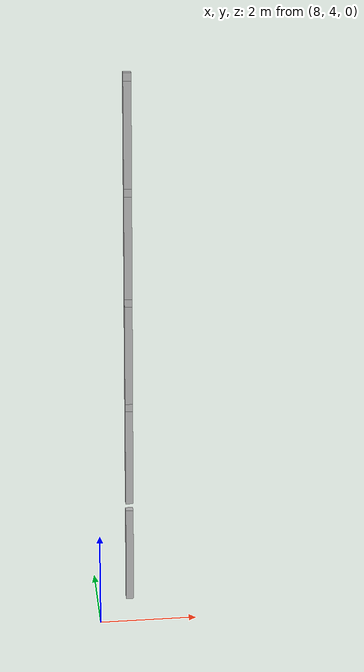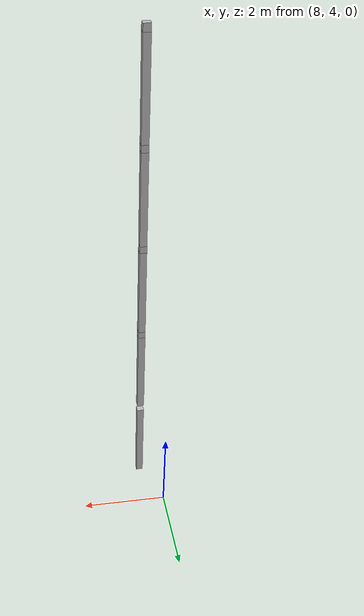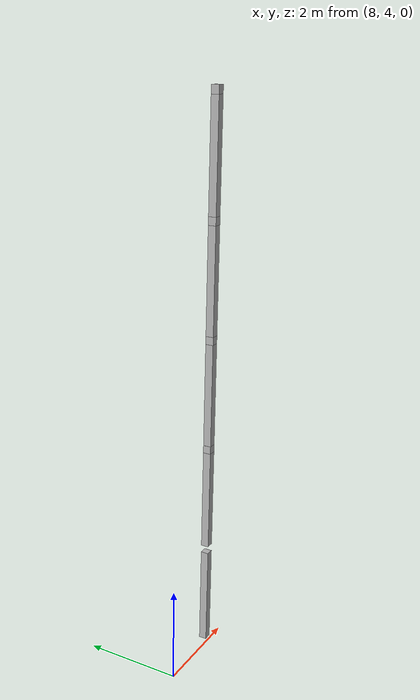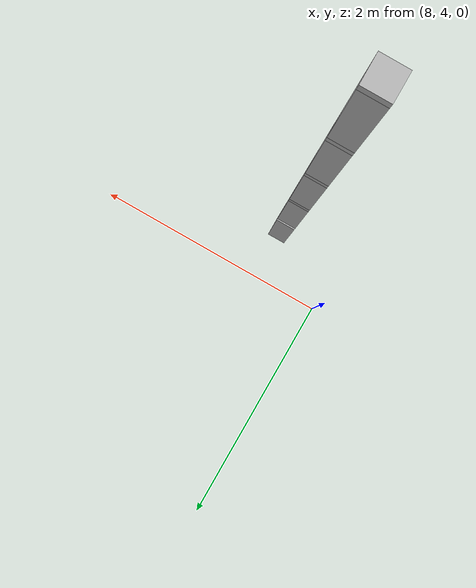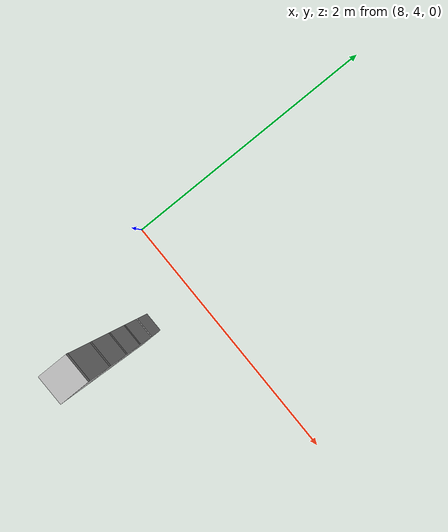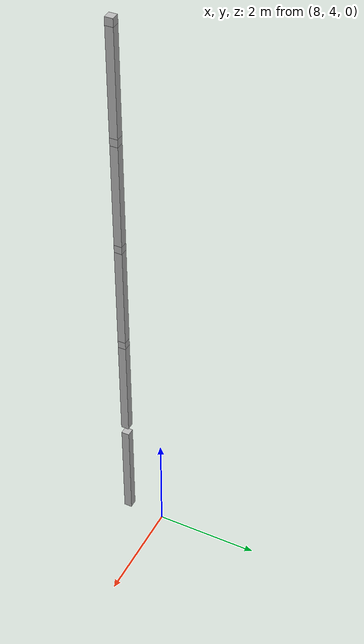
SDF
<sdf version="1.7">
 <world name="default">
  <model name="orthogonal_747_2.000.15_TS">
   <static>1</static>
   <link name="z_link_2_4_7">
    <inertial>
     <mass>1</mass>
     <inertia>
      <ixx>0.166667</ixx>
      <ixy>0</ixy>
      <ixz>0</ixz>
      <iyy>0.166667</iyy>
      <iyz>0</iyz>
      <izz>0.166667</izz>
     </inertia>
    </inertial>
    <pose>15.05 8.6 4.3 0 -0 0</pose>
    <visual name="visual_0">
     <laser_retro>2549</laser_retro>
     <geometry><box><size>0.15 1e-06 2</size></box></geometry>
     <material>
      <script><name>Gazebo/Grey</name><uri>file://media/materials/scripts/gazebo.material</uri></script>
      <shader type="pixel"><normal_map>__default__</normal_map></shader>
      <ambient>0.678 0.498 0.659 1</ambient>
      <diffuse>0.7 0.7 0.7 1</diffuse>
      <specular>0.01 0.01 0.01 1</specular>
      <emissive>0 0 0 1</emissive>
     </material>
     <pose>0 -0.075 0 0 -0 0</pose>
     <transparency>1</transparency>
    </visual>
    <visual name="visual_1">
     <laser_retro>2550</laser_retro>
     <geometry><box><size>0.15 1e-06 2</size></box></geometry>
     <material>
      <script><name>Gazebo/Grey</name><uri>file://media/materials/scripts/gazebo.material</uri></script>
      <shader type="pixel"><normal_map>__default__</normal_map></shader>
      <ambient>0.447 0.624 0.812 1</ambient>
      <diffuse>0.7 0.7 0.7 1</diffuse>
      <specular>0.01 0.01 0.01 1</specular>
      <emissive>0 0 0 1</emissive>
     </material>
     <pose>0 0.075 0 0 -0 0</pose>
     <transparency>1</transparency>
    </visual>
    <visual name="visual_2">
     <laser_retro>2551</laser_retro>
     <geometry><box><size>0.15 0.15 1e-06</size></box></geometry>
     <material>
      <script><name>Gazebo/Grey</name><uri>file://media/materials/scripts/gazebo.material</uri></script>
      <shader type="pixel"><normal_map>__default__</normal_map></shader>
      <ambient>0.988 0.686 0.243 1</ambient>
      <diffuse>0.7 0.7 0.7 1</diffuse>
      <specular>0.01 0.01 0.01 1</specular>
      <emissive>0 0 0 1</emissive>
     </material>
     <pose>0 0 -1 0 -0 0</pose>
     <transparency>1</transparency>
    </visual>
    <visual name="visual_3">
     <laser_retro>2552</laser_retro>
     <geometry><box><size>1e-06 0.15 2</size></box></geometry>
     <material>
      <script><name>Gazebo/Grey</name><uri>file://media/materials/scripts/gazebo.material</uri></script>
      <shader type="pixel"><normal_map>__default__</normal_map></shader>
      <ambient>0.988 0.914 0.31 1</ambient>
      <diffuse>0.7 0.7 0.7 1</diffuse>
      <specular>0.01 0.01 0.01 1</specular>
      <emissive>0 0 0 1</emissive>
     </material>
     <pose>0.075 0 0 0 -0 0</pose>
     <transparency>1</transparency>
    </visual>
    <visual name="visual_4">
     <laser_retro>2553</laser_retro>
     <geometry><box><size>0.15 0.15 1e-06</size></box></geometry>
     <material>
      <script><name>Gazebo/Grey</name><uri>file://media/materials/scripts/gazebo.material</uri></script>
      <shader type="pixel"><normal_map>__default__</normal_map></shader>
      <ambient>0.937 0.161 0.161 1</ambient>
      <diffuse>0.7 0.7 0.7 1</diffuse>
      <specular>0.01 0.01 0.01 1</specular>
      <emissive>0 0 0 1</emissive>
     </material>
     <pose>0 0 1 0 -0 0</pose>
     <transparency>1</transparency>
    </visual>
    <visual name="visual_5">
     <laser_retro>2554</laser_retro>
     <geometry><box><size>1e-06 0.15 2</size></box></geometry>
     <material>
      <script><name>Gazebo/Grey</name><uri>file://media/materials/scripts/gazebo.material</uri></script>
      <shader type="pixel"><normal_map>__default__</normal_map></shader>
      <ambient>0.541 0.886 0.204 1</ambient>
      <diffuse>0.7 0.7 0.7 1</diffuse>
      <specular>0.01 0.01 0.01 1</specular>
      <emissive>0 0 0 1</emissive>
     </material>
     <pose>-0.075 0 0 0 -0 0</pose>
     <transparency>1</transparency>
    </visual>
    <visual name="visual_texture">
     <geometry><box><size>0.149985 0.149985 1.9998</size></box></geometry>
     <material>
      <script>
       <uri>model://BASE_MODELS/simple_block_v2_textured/materials/scripts</uri>
       <uri>model://BASE_MODELS/simple_block_v2_textured/materials/textures</uri>
       <name>metal</name>
      </script>
     </material>
     <laser_retro>2555</laser_retro>
    </visual>
    <collision name="collision">
     <geometry><box><size>0.15 0.15 2</size></box></geometry>
     <surface>
      <friction>
       <ode><mu>1</mu><mu2>1</mu2><fdir1>0 0 0</fdir1><slip1>0</slip1><slip2>0</slip2></ode>
       <torsional>
        <coefficient>1</coefficient>
        <patch_radius>0</patch_radius>
        <surface_radius>0</surface_radius>
        <use_patch_radius>1</use_patch_radius>
        <ode><slip>0</slip></ode>
       </torsional>
      </friction>
      <bounce><restitution_coefficient>0</restitution_coefficient><threshold>1e+06</threshold></bounce>
      <contact>
       <collide_without_contact>0</collide_without_contact>
       <collide_without_contact_bitmask>1</collide_without_contact_bitmask>
       <collide_bitmask>1</collide_bitmask>
       <ode>
        <soft_cfm>0</soft_cfm>
        <soft_erp>0.2</soft_erp>
        <kp>1e+13</kp>
        <kd>1</kd>
        <max_vel>0.01</max_vel>
        <min_depth>0</min_depth>
       </ode>
       <bullet>
        <split_impulse>1</split_impulse>
        <split_impulse_penetration_threshold>-0.01</split_impulse_penetration_threshold>
        <soft_cfm>0</soft_cfm>
        <soft_erp>0.2</soft_erp>
        <kp>1e+13</kp>
        <kd>1</kd>
       </bullet>
      </contact>
     </surface>
    </collision>
   </link>
   <link name="u_link_3_4_7">
    <inertial>
     <mass>1</mass>
     <inertia>
      <ixx>0.166667</ixx>
      <ixy>0</ixy>
      <ixz>0</ixz>
      <iyy>0.166667</iyy>
      <iyz>0</iyz>
      <izz>0.166667</izz>
     </inertia>
    </inertial>
    <pose>15.05 8.6 7.525 0 -0 0</pose>
    <visual name="visual_0">
     <laser_retro>3445</laser_retro>
     <geometry><box><size>0.15 1e-06 0.15</size></box></geometry>
     <material>
      <script><name>Gazebo/Grey</name><uri>file://media/materials/scripts/gazebo.material</uri></script>
      <shader type="pixel"><normal_map>__default__</normal_map></shader>
      <ambient>0.678 0.498 0.659 1</ambient>
      <diffuse>0.7 0.7 0.7 1</diffuse>
      <specular>0.01 0.01 0.01 1</specular>
      <emissive>0 0 0 1</emissive>
     </material>
     <pose>0 -0.075 0 0 -0 0</pose>
     <transparency>1</transparency>
    </visual>
    <visual name="visual_1">
     <laser_retro>3446</laser_retro>
     <geometry><box><size>0.15 1e-06 0.15</size></box></geometry>
     <material>
      <script><name>Gazebo/Grey</name><uri>file://media/materials/scripts/gazebo.material</uri></script>
      <shader type="pixel"><normal_map>__default__</normal_map></shader>
      <ambient>0.447 0.624 0.812 1</ambient>
      <diffuse>0.7 0.7 0.7 1</diffuse>
      <specular>0.01 0.01 0.01 1</specular>
      <emissive>0 0 0 1</emissive>
     </material>
     <pose>0 0.075 0 0 -0 0</pose>
     <transparency>1</transparency>
    </visual>
    <visual name="visual_2">
     <laser_retro>3447</laser_retro>
     <geometry><box><size>0.15 0.15 1e-06</size></box></geometry>
     <material>
      <script><name>Gazebo/Grey</name><uri>file://media/materials/scripts/gazebo.material</uri></script>
      <shader type="pixel"><normal_map>__default__</normal_map></shader>
      <ambient>0.988 0.686 0.243 1</ambient>
      <diffuse>0.7 0.7 0.7 1</diffuse>
      <specular>0.01 0.01 0.01 1</specular>
      <emissive>0 0 0 1</emissive>
     </material>
     <pose>0 0 -0.075 0 -0 0</pose>
     <transparency>1</transparency>
    </visual>
    <visual name="visual_3">
     <laser_retro>3448</laser_retro>
     <geometry><box><size>1e-06 0.15 0.15</size></box></geometry>
     <material>
      <script><name>Gazebo/Grey</name><uri>file://media/materials/scripts/gazebo.material</uri></script>
      <shader type="pixel"><normal_map>__default__</normal_map></shader>
      <ambient>0.988 0.914 0.31 1</ambient>
      <diffuse>0.7 0.7 0.7 1</diffuse>
      <specular>0.01 0.01 0.01 1</specular>
      <emissive>0 0 0 1</emissive>
     </material>
     <pose>0.075 0 0 0 -0 0</pose>
     <transparency>1</transparency>
    </visual>
    <visual name="visual_4">
     <laser_retro>3449</laser_retro>
     <geometry><box><size>0.15 0.15 1e-06</size></box></geometry>
     <material>
      <script><name>Gazebo/Grey</name><uri>file://media/materials/scripts/gazebo.material</uri></script>
      <shader type="pixel"><normal_map>__default__</normal_map></shader>
      <ambient>0.937 0.161 0.161 1</ambient>
      <diffuse>0.7 0.7 0.7 1</diffuse>
      <specular>0.01 0.01 0.01 1</specular>
      <emissive>0 0 0 1</emissive>
     </material>
     <pose>0 0 0.075 0 -0 0</pose>
     <transparency>1</transparency>
    </visual>
    <visual name="visual_5">
     <laser_retro>3450</laser_retro>
     <geometry><box><size>1e-06 0.15 0.15</size></box></geometry>
     <material>
      <script><name>Gazebo/Grey</name><uri>file://media/materials/scripts/gazebo.material</uri></script>
      <shader type="pixel"><normal_map>__default__</normal_map></shader>
      <ambient>0.541 0.886 0.204 1</ambient>
      <diffuse>0.7 0.7 0.7 1</diffuse>
      <specular>0.01 0.01 0.01 1</specular>
      <emissive>0 0 0 1</emissive>
     </material>
     <pose>-0.075 0 0 0 -0 0</pose>
     <transparency>1</transparency>
    </visual>
    <visual name="visual_texture">
     <geometry><box><size>0.149985 0.149985 0.149985</size></box></geometry>
     <material>
      <script>
       <uri>model://BASE_MODELS/simple_block_v2_textured/materials/scripts</uri>
       <uri>model://BASE_MODELS/simple_block_v2_textured/materials/textures</uri>
       <name>metal</name>
      </script>
     </material>
     <laser_retro>3451</laser_retro>
    </visual>
    <collision name="collision">
     <geometry><box><size>0.15 0.15 0.15</size></box></geometry>
     <surface>
      <friction>
       <ode><mu>1</mu><mu2>1</mu2><fdir1>0 0 0</fdir1><slip1>0</slip1><slip2>0</slip2></ode>
       <torsional>
        <coefficient>1</coefficient>
        <patch_radius>0</patch_radius>
        <surface_radius>0</surface_radius>
        <use_patch_radius>1</use_patch_radius>
        <ode><slip>0</slip></ode>
       </torsional>
      </friction>
      <bounce><restitution_coefficient>0</restitution_coefficient><threshold>1e+06</threshold></bounce>
      <contact>
       <collide_without_contact>0</collide_without_contact>
       <collide_without_contact_bitmask>1</collide_without_contact_bitmask>
       <collide_bitmask>1</collide_bitmask>
       <ode>
        <soft_cfm>0</soft_cfm>
        <soft_erp>0.2</soft_erp>
        <kp>1e+13</kp>
        <kd>1</kd>
        <max_vel>0.01</max_vel>
        <min_depth>0</min_depth>
       </ode>
       <bullet>
        <split_impulse>1</split_impulse>
        <split_impulse_penetration_threshold>-0.01</split_impulse_penetration_threshold>
        <soft_cfm>0</soft_cfm>
        <soft_erp>0.2</soft_erp>
        <kp>1e+13</kp>
        <kd>1</kd>
       </bullet>
      </contact>
     </surface>
    </collision>
   </link>
   <link name="z_link_3_4_7">
    <inertial>
     <mass>1</mass>
     <inertia>
      <ixx>0.166667</ixx>
      <ixy>0</ixy>
      <ixz>0</ixz>
      <iyy>0.166667</iyy>
      <iyz>0</iyz>
      <izz>0.166667</izz>
     </inertia>
    </inertial>
    <pose>15.05 8.6 6.45 0 -0 0</pose>
    <visual name="visual_0">
     <laser_retro>3452</laser_retro>
     <geometry><box><size>0.15 1e-06 2</size></box></geometry>
     <material>
      <script><name>Gazebo/Grey</name><uri>file://media/materials/scripts/gazebo.material</uri></script>
      <shader type="pixel"><normal_map>__default__</normal_map></shader>
      <ambient>0.678 0.498 0.659 1</ambient>
      <diffuse>0.7 0.7 0.7 1</diffuse>
      <specular>0.01 0.01 0.01 1</specular>
      <emissive>0 0 0 1</emissive>
     </material>
     <pose>0 -0.075 0 0 -0 0</pose>
     <transparency>1</transparency>
    </visual>
    <visual name="visual_1">
     <laser_retro>3453</laser_retro>
     <geometry><box><size>0.15 1e-06 2</size></box></geometry>
     <material>
      <script><name>Gazebo/Grey</name><uri>file://media/materials/scripts/gazebo.material</uri></script>
      <shader type="pixel"><normal_map>__default__</normal_map></shader>
      <ambient>0.447 0.624 0.812 1</ambient>
      <diffuse>0.7 0.7 0.7 1</diffuse>
      <specular>0.01 0.01 0.01 1</specular>
      <emissive>0 0 0 1</emissive>
     </material>
     <pose>0 0.075 0 0 -0 0</pose>
     <transparency>1</transparency>
    </visual>
    <visual name="visual_2">
     <laser_retro>3454</laser_retro>
     <geometry><box><size>0.15 0.15 1e-06</size></box></geometry>
     <material>
      <script><name>Gazebo/Grey</name><uri>file://media/materials/scripts/gazebo.material</uri></script>
      <shader type="pixel"><normal_map>__default__</normal_map></shader>
      <ambient>0.988 0.686 0.243 1</ambient>
      <diffuse>0.7 0.7 0.7 1</diffuse>
      <specular>0.01 0.01 0.01 1</specular>
      <emissive>0 0 0 1</emissive>
     </material>
     <pose>0 0 -1 0 -0 0</pose>
     <transparency>1</transparency>
    </visual>
    <visual name="visual_3">
     <laser_retro>3455</laser_retro>
     <geometry><box><size>1e-06 0.15 2</size></box></geometry>
     <material>
      <script><name>Gazebo/Grey</name><uri>file://media/materials/scripts/gazebo.material</uri></script>
      <shader type="pixel"><normal_map>__default__</normal_map></shader>
      <ambient>0.988 0.914 0.31 1</ambient>
      <diffuse>0.7 0.7 0.7 1</diffuse>
      <specular>0.01 0.01 0.01 1</specular>
      <emissive>0 0 0 1</emissive>
     </material>
     <pose>0.075 0 0 0 -0 0</pose>
     <transparency>1</transparency>
    </visual>
    <visual name="visual_4">
     <laser_retro>3456</laser_retro>
     <geometry><box><size>0.15 0.15 1e-06</size></box></geometry>
     <material>
      <script><name>Gazebo/Grey</name><uri>file://media/materials/scripts/gazebo.material</uri></script>
      <shader type="pixel"><normal_map>__default__</normal_map></shader>
      <ambient>0.937 0.161 0.161 1</ambient>
      <diffuse>0.7 0.7 0.7 1</diffuse>
      <specular>0.01 0.01 0.01 1</specular>
      <emissive>0 0 0 1</emissive>
     </material>
     <pose>0 0 1 0 -0 0</pose>
     <transparency>1</transparency>
    </visual>
    <visual name="visual_5">
     <laser_retro>3457</laser_retro>
     <geometry><box><size>1e-06 0.15 2</size></box></geometry>
     <material>
      <script><name>Gazebo/Grey</name><uri>file://media/materials/scripts/gazebo.material</uri></script>
      <shader type="pixel"><normal_map>__default__</normal_map></shader>
      <ambient>0.541 0.886 0.204 1</ambient>
      <diffuse>0.7 0.7 0.7 1</diffuse>
      <specular>0.01 0.01 0.01 1</specular>
      <emissive>0 0 0 1</emissive>
     </material>
     <pose>-0.075 0 0 0 -0 0</pose>
     <transparency>1</transparency>
    </visual>
    <visual name="visual_texture">
     <geometry><box><size>0.149985 0.149985 1.9998</size></box></geometry>
     <material>
      <script>
       <uri>model://BASE_MODELS/simple_block_v2_textured/materials/scripts</uri>
       <uri>model://BASE_MODELS/simple_block_v2_textured/materials/textures</uri>
       <name>metal</name>
      </script>
     </material>
     <laser_retro>3458</laser_retro>
    </visual>
    <collision name="collision">
     <geometry><box><size>0.15 0.15 2</size></box></geometry>
     <surface>
      <friction>
       <ode><mu>1</mu><mu2>1</mu2><fdir1>0 0 0</fdir1><slip1>0</slip1><slip2>0</slip2></ode>
       <torsional>
        <coefficient>1</coefficient>
        <patch_radius>0</patch_radius>
        <surface_radius>0</surface_radius>
        <use_patch_radius>1</use_patch_radius>
        <ode><slip>0</slip></ode>
       </torsional>
      </friction>
      <bounce><restitution_coefficient>0</restitution_coefficient><threshold>1e+06</threshold></bounce>
      <contact>
       <collide_without_contact>0</collide_without_contact>
       <collide_without_contact_bitmask>1</collide_without_contact_bitmask>
       <collide_bitmask>1</collide_bitmask>
       <ode>
        <soft_cfm>0</soft_cfm>
        <soft_erp>0.2</soft_erp>
        <kp>1e+13</kp>
        <kd>1</kd>
        <max_vel>0.01</max_vel>
        <min_depth>0</min_depth>
       </ode>
       <bullet>
        <split_impulse>1</split_impulse>
        <split_impulse_penetration_threshold>-0.01</split_impulse_penetration_threshold>
        <soft_cfm>0</soft_cfm>
        <soft_erp>0.2</soft_erp>
        <kp>1e+13</kp>
        <kd>1</kd>
       </bullet>
      </contact>
     </surface>
    </collision>
   </link>
   <link name="u_link_4_4_7">
    <inertial>
     <mass>1</mass>
     <inertia>
      <ixx>0.166667</ixx>
      <ixy>0</ixy>
      <ixz>0</ixz>
      <iyy>0.166667</iyy>
      <iyz>0</iyz>
      <izz>0.166667</izz>
     </inertia>
    </inertial>
    <pose>15.05 8.6 9.675 0 -0 0</pose>
    <visual name="visual_0">
     <laser_retro>4348</laser_retro>
     <geometry><box><size>0.15 1e-06 0.15</size></box></geometry>
     <material>
      <script><name>Gazebo/Grey</name><uri>file://media/materials/scripts/gazebo.material</uri></script>
      <shader type="pixel"><normal_map>__default__</normal_map></shader>
      <ambient>0.678 0.498 0.659 1</ambient>
      <diffuse>0.7 0.7 0.7 1</diffuse>
      <specular>0.01 0.01 0.01 1</specular>
      <emissive>0 0 0 1</emissive>
     </material>
     <pose>0 -0.075 0 0 -0 0</pose>
     <transparency>1</transparency>
    </visual>
    <visual name="visual_1">
     <laser_retro>4349</laser_retro>
     <geometry><box><size>0.15 1e-06 0.15</size></box></geometry>
     <material>
      <script><name>Gazebo/Grey</name><uri>file://media/materials/scripts/gazebo.material</uri></script>
      <shader type="pixel"><normal_map>__default__</normal_map></shader>
      <ambient>0.447 0.624 0.812 1</ambient>
      <diffuse>0.7 0.7 0.7 1</diffuse>
      <specular>0.01 0.01 0.01 1</specular>
      <emissive>0 0 0 1</emissive>
     </material>
     <pose>0 0.075 0 0 -0 0</pose>
     <transparency>1</transparency>
    </visual>
    <visual name="visual_2">
     <laser_retro>4350</laser_retro>
     <geometry><box><size>0.15 0.15 1e-06</size></box></geometry>
     <material>
      <script><name>Gazebo/Grey</name><uri>file://media/materials/scripts/gazebo.material</uri></script>
      <shader type="pixel"><normal_map>__default__</normal_map></shader>
      <ambient>0.988 0.686 0.243 1</ambient>
      <diffuse>0.7 0.7 0.7 1</diffuse>
      <specular>0.01 0.01 0.01 1</specular>
      <emissive>0 0 0 1</emissive>
     </material>
     <pose>0 0 -0.075 0 -0 0</pose>
     <transparency>1</transparency>
    </visual>
    <visual name="visual_3">
     <laser_retro>4351</laser_retro>
     <geometry><box><size>1e-06 0.15 0.15</size></box></geometry>
     <material>
      <script><name>Gazebo/Grey</name><uri>file://media/materials/scripts/gazebo.material</uri></script>
      <shader type="pixel"><normal_map>__default__</normal_map></shader>
      <ambient>0.988 0.914 0.31 1</ambient>
      <diffuse>0.7 0.7 0.7 1</diffuse>
      <specular>0.01 0.01 0.01 1</specular>
      <emissive>0 0 0 1</emissive>
     </material>
     <pose>0.075 0 0 0 -0 0</pose>
     <transparency>1</transparency>
    </visual>
    <visual name="visual_4">
     <laser_retro>4352</laser_retro>
     <geometry><box><size>0.15 0.15 1e-06</size></box></geometry>
     <material>
      <script><name>Gazebo/Grey</name><uri>file://media/materials/scripts/gazebo.material</uri></script>
      <shader type="pixel"><normal_map>__default__</normal_map></shader>
      <ambient>0.937 0.161 0.161 1</ambient>
      <diffuse>0.7 0.7 0.7 1</diffuse>
      <specular>0.01 0.01 0.01 1</specular>
      <emissive>0 0 0 1</emissive>
     </material>
     <pose>0 0 0.075 0 -0 0</pose>
     <transparency>1</transparency>
    </visual>
    <visual name="visual_5">
     <laser_retro>4353</laser_retro>
     <geometry><box><size>1e-06 0.15 0.15</size></box></geometry>
     <material>
      <script><name>Gazebo/Grey</name><uri>file://media/materials/scripts/gazebo.material</uri></script>
      <shader type="pixel"><normal_map>__default__</normal_map></shader>
      <ambient>0.541 0.886 0.204 1</ambient>
      <diffuse>0.7 0.7 0.7 1</diffuse>
      <specular>0.01 0.01 0.01 1</specular>
      <emissive>0 0 0 1</emissive>
     </material>
     <pose>-0.075 0 0 0 -0 0</pose>
     <transparency>1</transparency>
    </visual>
    <visual name="visual_texture">
     <geometry><box><size>0.149985 0.149985 0.149985</size></box></geometry>
     <material>
      <script>
       <uri>model://BASE_MODELS/simple_block_v2_textured/materials/scripts</uri>
       <uri>model://BASE_MODELS/simple_block_v2_textured/materials/textures</uri>
       <name>metal</name>
      </script>
     </material>
     <laser_retro>4354</laser_retro>
    </visual>
    <collision name="collision">
     <geometry><box><size>0.15 0.15 0.15</size></box></geometry>
     <surface>
      <friction>
       <ode><mu>1</mu><mu2>1</mu2><fdir1>0 0 0</fdir1><slip1>0</slip1><slip2>0</slip2></ode>
       <torsional>
        <coefficient>1</coefficient>
        <patch_radius>0</patch_radius>
        <surface_radius>0</surface_radius>
        <use_patch_radius>1</use_patch_radius>
        <ode><slip>0</slip></ode>
       </torsional>
      </friction>
      <bounce><restitution_coefficient>0</restitution_coefficient><threshold>1e+06</threshold></bounce>
      <contact>
       <collide_without_contact>0</collide_without_contact>
       <collide_without_contact_bitmask>1</collide_without_contact_bitmask>
       <collide_bitmask>1</collide_bitmask>
       <ode>
        <soft_cfm>0</soft_cfm>
        <soft_erp>0.2</soft_erp>
        <kp>1e+13</kp>
        <kd>1</kd>
        <max_vel>0.01</max_vel>
        <min_depth>0</min_depth>
       </ode>
       <bullet>
        <split_impulse>1</split_impulse>
        <split_impulse_penetration_threshold>-0.01</split_impulse_penetration_threshold>
        <soft_cfm>0</soft_cfm>
        <soft_erp>0.2</soft_erp>
        <kp>1e+13</kp>
        <kd>1</kd>
       </bullet>
      </contact>
     </surface>
    </collision>
   </link>
   <link name="z_link_4_4_7">
    <inertial>
     <mass>1</mass>
     <inertia>
      <ixx>0.166667</ixx>
      <ixy>0</ixy>
      <ixz>0</ixz>
      <iyy>0.166667</iyy>
      <iyz>0</iyz>
      <izz>0.166667</izz>
     </inertia>
    </inertial>
    <pose>15.05 8.6 8.6 0 -0 0</pose>
    <visual name="visual_0">
     <laser_retro>4355</laser_retro>
     <geometry><box><size>0.15 1e-06 2</size></box></geometry>
     <material>
      <script><name>Gazebo/Grey</name><uri>file://media/materials/scripts/gazebo.material</uri></script>
      <shader type="pixel"><normal_map>__default__</normal_map></shader>
      <ambient>0.678 0.498 0.659 1</ambient>
      <diffuse>0.7 0.7 0.7 1</diffuse>
      <specular>0.01 0.01 0.01 1</specular>
      <emissive>0 0 0 1</emissive>
     </material>
     <pose>0 -0.075 0 0 -0 0</pose>
     <transparency>1</transparency>
    </visual>
    <visual name="visual_1">
     <laser_retro>4356</laser_retro>
     <geometry><box><size>0.15 1e-06 2</size></box></geometry>
     <material>
      <script><name>Gazebo/Grey</name><uri>file://media/materials/scripts/gazebo.material</uri></script>
      <shader type="pixel"><normal_map>__default__</normal_map></shader>
      <ambient>0.447 0.624 0.812 1</ambient>
      <diffuse>0.7 0.7 0.7 1</diffuse>
      <specular>0.01 0.01 0.01 1</specular>
      <emissive>0 0 0 1</emissive>
     </material>
     <pose>0 0.075 0 0 -0 0</pose>
     <transparency>1</transparency>
    </visual>
    <visual name="visual_2">
     <laser_retro>4357</laser_retro>
     <geometry><box><size>0.15 0.15 1e-06</size></box></geometry>
     <material>
      <script><name>Gazebo/Grey</name><uri>file://media/materials/scripts/gazebo.material</uri></script>
      <shader type="pixel"><normal_map>__default__</normal_map></shader>
      <ambient>0.988 0.686 0.243 1</ambient>
      <diffuse>0.7 0.7 0.7 1</diffuse>
      <specular>0.01 0.01 0.01 1</specular>
      <emissive>0 0 0 1</emissive>
     </material>
     <pose>0 0 -1 0 -0 0</pose>
     <transparency>1</transparency>
    </visual>
    <visual name="visual_3">
     <laser_retro>4358</laser_retro>
     <geometry><box><size>1e-06 0.15 2</size></box></geometry>
     <material>
      <script><name>Gazebo/Grey</name><uri>file://media/materials/scripts/gazebo.material</uri></script>
      <shader type="pixel"><normal_map>__default__</normal_map></shader>
      <ambient>0.988 0.914 0.31 1</ambient>
      <diffuse>0.7 0.7 0.7 1</diffuse>
      <specular>0.01 0.01 0.01 1</specular>
      <emissive>0 0 0 1</emissive>
     </material>
     <pose>0.075 0 0 0 -0 0</pose>
     <transparency>1</transparency>
    </visual>
    <visual name="visual_4">
     <laser_retro>4359</laser_retro>
     <geometry><box><size>0.15 0.15 1e-06</size></box></geometry>
     <material>
      <script><name>Gazebo/Grey</name><uri>file://media/materials/scripts/gazebo.material</uri></script>
      <shader type="pixel"><normal_map>__default__</normal_map></shader>
      <ambient>0.937 0.161 0.161 1</ambient>
      <diffuse>0.7 0.7 0.7 1</diffuse>
      <specular>0.01 0.01 0.01 1</specular>
      <emissive>0 0 0 1</emissive>
     </material>
     <pose>0 0 1 0 -0 0</pose>
     <transparency>1</transparency>
    </visual>
    <visual name="visual_5">
     <laser_retro>4360</laser_retro>
     <geometry><box><size>1e-06 0.15 2</size></box></geometry>
     <material>
      <script><name>Gazebo/Grey</name><uri>file://media/materials/scripts/gazebo.material</uri></script>
      <shader type="pixel"><normal_map>__default__</normal_map></shader>
      <ambient>0.541 0.886 0.204 1</ambient>
      <diffuse>0.7 0.7 0.7 1</diffuse>
      <specular>0.01 0.01 0.01 1</specular>
      <emissive>0 0 0 1</emissive>
     </material>
     <pose>-0.075 0 0 0 -0 0</pose>
     <transparency>1</transparency>
    </visual>
    <visual name="visual_texture">
     <geometry><box><size>0.149985 0.149985 1.9998</size></box></geometry>
     <material>
      <script>
       <uri>model://BASE_MODELS/simple_block_v2_textured/materials/scripts</uri>
       <uri>model://BASE_MODELS/simple_block_v2_textured/materials/textures</uri>
       <name>metal</name>
      </script>
     </material>
     <laser_retro>4361</laser_retro>
    </visual>
    <collision name="collision">
     <geometry><box><size>0.15 0.15 2</size></box></geometry>
     <surface>
      <friction>
       <ode><mu>1</mu><mu2>1</mu2><fdir1>0 0 0</fdir1><slip1>0</slip1><slip2>0</slip2></ode>
       <torsional>
        <coefficient>1</coefficient>
        <patch_radius>0</patch_radius>
        <surface_radius>0</surface_radius>
        <use_patch_radius>1</use_patch_radius>
        <ode><slip>0</slip></ode>
       </torsional>
      </friction>
      <bounce><restitution_coefficient>0</restitution_coefficient><threshold>1e+06</threshold></bounce>
      <contact>
       <collide_without_contact>0</collide_without_contact>
       <collide_without_contact_bitmask>1</collide_without_contact_bitmask>
       <collide_bitmask>1</collide_bitmask>
       <ode>
        <soft_cfm>0</soft_cfm>
        <soft_erp>0.2</soft_erp>
        <kp>1e+13</kp>
        <kd>1</kd>
        <max_vel>0.01</max_vel>
        <min_depth>0</min_depth>
       </ode>
       <bullet>
        <split_impulse>1</split_impulse>
        <split_impulse_penetration_threshold>-0.01</split_impulse_penetration_threshold>
        <soft_cfm>0</soft_cfm>
        <soft_erp>0.2</soft_erp>
        <kp>1e+13</kp>
        <kd>1</kd>
       </bullet>
      </contact>
     </surface>
    </collision>
   </link>
   <link name="u_link_5_4_7">
    <inertial>
     <mass>1</mass>
     <inertia>
      <ixx>0.166667</ixx>
      <ixy>0</ixy>
      <ixz>0</ixz>
      <iyy>0.166667</iyy>
      <iyz>0</iyz>
      <izz>0.166667</izz>
     </inertia>
    </inertial>
    <pose>15.05 8.6 11.825 0 -0 0</pose>
    <visual name="visual_0">
     <laser_retro>5251</laser_retro>
     <geometry><box><size>0.15 1e-06 0.15</size></box></geometry>
     <material>
      <script><name>Gazebo/Grey</name><uri>file://media/materials/scripts/gazebo.material</uri></script>
      <shader type="pixel"><normal_map>__default__</normal_map></shader>
      <ambient>0.678 0.498 0.659 1</ambient>
      <diffuse>0.7 0.7 0.7 1</diffuse>
      <specular>0.01 0.01 0.01 1</specular>
      <emissive>0 0 0 1</emissive>
     </material>
     <pose>0 -0.075 0 0 -0 0</pose>
     <transparency>1</transparency>
    </visual>
    <visual name="visual_1">
     <laser_retro>5252</laser_retro>
     <geometry><box><size>0.15 1e-06 0.15</size></box></geometry>
     <material>
      <script><name>Gazebo/Grey</name><uri>file://media/materials/scripts/gazebo.material</uri></script>
      <shader type="pixel"><normal_map>__default__</normal_map></shader>
      <ambient>0.447 0.624 0.812 1</ambient>
      <diffuse>0.7 0.7 0.7 1</diffuse>
      <specular>0.01 0.01 0.01 1</specular>
      <emissive>0 0 0 1</emissive>
     </material>
     <pose>0 0.075 0 0 -0 0</pose>
     <transparency>1</transparency>
    </visual>
    <visual name="visual_2">
     <laser_retro>5253</laser_retro>
     <geometry><box><size>0.15 0.15 1e-06</size></box></geometry>
     <material>
      <script><name>Gazebo/Grey</name><uri>file://media/materials/scripts/gazebo.material</uri></script>
      <shader type="pixel"><normal_map>__default__</normal_map></shader>
      <ambient>0.988 0.686 0.243 1</ambient>
      <diffuse>0.7 0.7 0.7 1</diffuse>
      <specular>0.01 0.01 0.01 1</specular>
      <emissive>0 0 0 1</emissive>
     </material>
     <pose>0 0 -0.075 0 -0 0</pose>
     <transparency>1</transparency>
    </visual>
    <visual name="visual_3">
     <laser_retro>5254</laser_retro>
     <geometry><box><size>1e-06 0.15 0.15</size></box></geometry>
     <material>
      <script><name>Gazebo/Grey</name><uri>file://media/materials/scripts/gazebo.material</uri></script>
      <shader type="pixel"><normal_map>__default__</normal_map></shader>
      <ambient>0.988 0.914 0.31 1</ambient>
      <diffuse>0.7 0.7 0.7 1</diffuse>
      <specular>0.01 0.01 0.01 1</specular>
      <emissive>0 0 0 1</emissive>
     </material>
     <pose>0.075 0 0 0 -0 0</pose>
     <transparency>1</transparency>
    </visual>
    <visual name="visual_4">
     <laser_retro>5255</laser_retro>
     <geometry><box><size>0.15 0.15 1e-06</size></box></geometry>
     <material>
      <script><name>Gazebo/Grey</name><uri>file://media/materials/scripts/gazebo.material</uri></script>
      <shader type="pixel"><normal_map>__default__</normal_map></shader>
      <ambient>0.937 0.161 0.161 1</ambient>
      <diffuse>0.7 0.7 0.7 1</diffuse>
      <specular>0.01 0.01 0.01 1</specular>
      <emissive>0 0 0 1</emissive>
     </material>
     <pose>0 0 0.075 0 -0 0</pose>
     <transparency>1</transparency>
    </visual>
    <visual name="visual_5">
     <laser_retro>5256</laser_retro>
     <geometry><box><size>1e-06 0.15 0.15</size></box></geometry>
     <material>
      <script><name>Gazebo/Grey</name><uri>file://media/materials/scripts/gazebo.material</uri></script>
      <shader type="pixel"><normal_map>__default__</normal_map></shader>
      <ambient>0.541 0.886 0.204 1</ambient>
      <diffuse>0.7 0.7 0.7 1</diffuse>
      <specular>0.01 0.01 0.01 1</specular>
      <emissive>0 0 0 1</emissive>
     </material>
     <pose>-0.075 0 0 0 -0 0</pose>
     <transparency>1</transparency>
    </visual>
    <visual name="visual_texture">
     <geometry><box><size>0.149985 0.149985 0.149985</size></box></geometry>
     <material>
      <script>
       <uri>model://BASE_MODELS/simple_block_v2_textured/materials/scripts</uri>
       <uri>model://BASE_MODELS/simple_block_v2_textured/materials/textures</uri>
       <name>metal</name>
      </script>
     </material>
     <laser_retro>5257</laser_retro>
    </visual>
    <collision name="collision">
     <geometry><box><size>0.15 0.15 0.15</size></box></geometry>
     <surface>
      <friction>
       <ode><mu>1</mu><mu2>1</mu2><fdir1>0 0 0</fdir1><slip1>0</slip1><slip2>0</slip2></ode>
       <torsional>
        <coefficient>1</coefficient>
        <patch_radius>0</patch_radius>
        <surface_radius>0</surface_radius>
        <use_patch_radius>1</use_patch_radius>
        <ode><slip>0</slip></ode>
       </torsional>
      </friction>
      <bounce><restitution_coefficient>0</restitution_coefficient><threshold>1e+06</threshold></bounce>
      <contact>
       <collide_without_contact>0</collide_without_contact>
       <collide_without_contact_bitmask>1</collide_without_contact_bitmask>
       <collide_bitmask>1</collide_bitmask>
       <ode>
        <soft_cfm>0</soft_cfm>
        <soft_erp>0.2</soft_erp>
        <kp>1e+13</kp>
        <kd>1</kd>
        <max_vel>0.01</max_vel>
        <min_depth>0</min_depth>
       </ode>
       <bullet>
        <split_impulse>1</split_impulse>
        <split_impulse_penetration_threshold>-0.01</split_impulse_penetration_threshold>
        <soft_cfm>0</soft_cfm>
        <soft_erp>0.2</soft_erp>
        <kp>1e+13</kp>
        <kd>1</kd>
       </bullet>
      </contact>
     </surface>
    </collision>
   </link>
   <link name="z_link_5_4_7">
    <inertial>
     <mass>1</mass>
     <inertia>
      <ixx>0.166667</ixx>
      <ixy>0</ixy>
      <ixz>0</ixz>
      <iyy>0.166667</iyy>
      <iyz>0</iyz>
      <izz>0.166667</izz>
     </inertia>
    </inertial>
    <pose>15.05 8.6 10.75 0 -0 0</pose>
    <visual name="visual_0">
     <laser_retro>5258</laser_retro>
     <geometry><box><size>0.15 1e-06 2</size></box></geometry>
     <material>
      <script><name>Gazebo/Grey</name><uri>file://media/materials/scripts/gazebo.material</uri></script>
      <shader type="pixel"><normal_map>__default__</normal_map></shader>
      <ambient>0.678 0.498 0.659 1</ambient>
      <diffuse>0.7 0.7 0.7 1</diffuse>
      <specular>0.01 0.01 0.01 1</specular>
      <emissive>0 0 0 1</emissive>
     </material>
     <pose>0 -0.075 0 0 -0 0</pose>
     <transparency>1</transparency>
    </visual>
    <visual name="visual_1">
     <laser_retro>5259</laser_retro>
     <geometry><box><size>0.15 1e-06 2</size></box></geometry>
     <material>
      <script><name>Gazebo/Grey</name><uri>file://media/materials/scripts/gazebo.material</uri></script>
      <shader type="pixel"><normal_map>__default__</normal_map></shader>
      <ambient>0.447 0.624 0.812 1</ambient>
      <diffuse>0.7 0.7 0.7 1</diffuse>
      <specular>0.01 0.01 0.01 1</specular>
      <emissive>0 0 0 1</emissive>
     </material>
     <pose>0 0.075 0 0 -0 0</pose>
     <transparency>1</transparency>
    </visual>
    <visual name="visual_2">
     <laser_retro>5260</laser_retro>
     <geometry><box><size>0.15 0.15 1e-06</size></box></geometry>
     <material>
      <script><name>Gazebo/Grey</name><uri>file://media/materials/scripts/gazebo.material</uri></script>
      <shader type="pixel"><normal_map>__default__</normal_map></shader>
      <ambient>0.988 0.686 0.243 1</ambient>
      <diffuse>0.7 0.7 0.7 1</diffuse>
      <specular>0.01 0.01 0.01 1</specular>
      <emissive>0 0 0 1</emissive>
     </material>
     <pose>0 0 -1 0 -0 0</pose>
     <transparency>1</transparency>
    </visual>
    <visual name="visual_3">
     <laser_retro>5261</laser_retro>
     <geometry><box><size>1e-06 0.15 2</size></box></geometry>
     <material>
      <script><name>Gazebo/Grey</name><uri>file://media/materials/scripts/gazebo.material</uri></script>
      <shader type="pixel"><normal_map>__default__</normal_map></shader>
      <ambient>0.988 0.914 0.31 1</ambient>
      <diffuse>0.7 0.7 0.7 1</diffuse>
      <specular>0.01 0.01 0.01 1</specular>
      <emissive>0 0 0 1</emissive>
     </material>
     <pose>0.075 0 0 0 -0 0</pose>
     <transparency>1</transparency>
    </visual>
    <visual name="visual_4">
     <laser_retro>5262</laser_retro>
     <geometry><box><size>0.15 0.15 1e-06</size></box></geometry>
     <material>
      <script><name>Gazebo/Grey</name><uri>file://media/materials/scripts/gazebo.material</uri></script>
      <shader type="pixel"><normal_map>__default__</normal_map></shader>
      <ambient>0.937 0.161 0.161 1</ambient>
      <diffuse>0.7 0.7 0.7 1</diffuse>
      <specular>0.01 0.01 0.01 1</specular>
      <emissive>0 0 0 1</emissive>
     </material>
     <pose>0 0 1 0 -0 0</pose>
     <transparency>1</transparency>
    </visual>
    <visual name="visual_5">
     <laser_retro>5263</laser_retro>
     <geometry><box><size>1e-06 0.15 2</size></box></geometry>
     <material>
      <script><name>Gazebo/Grey</name><uri>file://media/materials/scripts/gazebo.material</uri></script>
      <shader type="pixel"><normal_map>__default__</normal_map></shader>
      <ambient>0.541 0.886 0.204 1</ambient>
      <diffuse>0.7 0.7 0.7 1</diffuse>
      <specular>0.01 0.01 0.01 1</specular>
      <emissive>0 0 0 1</emissive>
     </material>
     <pose>-0.075 0 0 0 -0 0</pose>
     <transparency>1</transparency>
    </visual>
    <visual name="visual_texture">
     <geometry><box><size>0.149985 0.149985 1.9998</size></box></geometry>
     <material>
      <script>
       <uri>model://BASE_MODELS/simple_block_v2_textured/materials/scripts</uri>
       <uri>model://BASE_MODELS/simple_block_v2_textured/materials/textures</uri>
       <name>metal</name>
      </script>
     </material>
     <laser_retro>5264</laser_retro>
    </visual>
    <collision name="collision">
     <geometry><box><size>0.15 0.15 2</size></box></geometry>
     <surface>
      <friction>
       <ode><mu>1</mu><mu2>1</mu2><fdir1>0 0 0</fdir1><slip1>0</slip1><slip2>0</slip2></ode>
       <torsional>
        <coefficient>1</coefficient>
        <patch_radius>0</patch_radius>
        <surface_radius>0</surface_radius>
        <use_patch_radius>1</use_patch_radius>
        <ode><slip>0</slip></ode>
       </torsional>
      </friction>
      <bounce><restitution_coefficient>0</restitution_coefficient><threshold>1e+06</threshold></bounce>
      <contact>
       <collide_without_contact>0</collide_without_contact>
       <collide_without_contact_bitmask>1</collide_without_contact_bitmask>
       <collide_bitmask>1</collide_bitmask>
       <ode>
        <soft_cfm>0</soft_cfm>
        <soft_erp>0.2</soft_erp>
        <kp>1e+13</kp>
        <kd>1</kd>
        <max_vel>0.01</max_vel>
        <min_depth>0</min_depth>
       </ode>
       <bullet>
        <split_impulse>1</split_impulse>
        <split_impulse_penetration_threshold>-0.01</split_impulse_penetration_threshold>
        <soft_cfm>0</soft_cfm>
        <soft_erp>0.2</soft_erp>
        <kp>1e+13</kp>
        <kd>1</kd>
       </bullet>
      </contact>
     </surface>
    </collision>
   </link>
   <link name="u_link_6_4_7">
    <inertial>
     <mass>1</mass>
     <inertia>
      <ixx>0.166667</ixx>
      <ixy>0</ixy>
      <ixz>0</ixz>
      <iyy>0.166667</iyy>
      <iyz>0</iyz>
      <izz>0.166667</izz>
     </inertia>
    </inertial>
    <pose>15.05 8.6 13.975 0 -0 0</pose>
    <visual name="visual_0">
     <laser_retro>6280</laser_retro>
     <geometry><box><size>0.15 1e-06 0.15</size></box></geometry>
     <material>
      <script><name>Gazebo/Grey</name><uri>file://media/materials/scripts/gazebo.material</uri></script>
      <shader type="pixel"><normal_map>__default__</normal_map></shader>
      <ambient>0.678 0.498 0.659 1</ambient>
      <diffuse>0.7 0.7 0.7 1</diffuse>
      <specular>0.01 0.01 0.01 1</specular>
      <emissive>0 0 0 1</emissive>
     </material>
     <pose>0 -0.075 0 0 -0 0</pose>
     <transparency>1</transparency>
    </visual>
    <visual name="visual_1">
     <laser_retro>6281</laser_retro>
     <geometry><box><size>0.15 1e-06 0.15</size></box></geometry>
     <material>
      <script><name>Gazebo/Grey</name><uri>file://media/materials/scripts/gazebo.material</uri></script>
      <shader type="pixel"><normal_map>__default__</normal_map></shader>
      <ambient>0.447 0.624 0.812 1</ambient>
      <diffuse>0.7 0.7 0.7 1</diffuse>
      <specular>0.01 0.01 0.01 1</specular>
      <emissive>0 0 0 1</emissive>
     </material>
     <pose>0 0.075 0 0 -0 0</pose>
     <transparency>1</transparency>
    </visual>
    <visual name="visual_2">
     <laser_retro>6282</laser_retro>
     <geometry><box><size>0.15 0.15 1e-06</size></box></geometry>
     <material>
      <script><name>Gazebo/Grey</name><uri>file://media/materials/scripts/gazebo.material</uri></script>
      <shader type="pixel"><normal_map>__default__</normal_map></shader>
      <ambient>0.988 0.686 0.243 1</ambient>
      <diffuse>0.7 0.7 0.7 1</diffuse>
      <specular>0.01 0.01 0.01 1</specular>
      <emissive>0 0 0 1</emissive>
     </material>
     <pose>0 0 -0.075 0 -0 0</pose>
     <transparency>1</transparency>
    </visual>
    <visual name="visual_3">
     <laser_retro>6283</laser_retro>
     <geometry><box><size>1e-06 0.15 0.15</size></box></geometry>
     <material>
      <script><name>Gazebo/Grey</name><uri>file://media/materials/scripts/gazebo.material</uri></script>
      <shader type="pixel"><normal_map>__default__</normal_map></shader>
      <ambient>0.988 0.914 0.31 1</ambient>
      <diffuse>0.7 0.7 0.7 1</diffuse>
      <specular>0.01 0.01 0.01 1</specular>
      <emissive>0 0 0 1</emissive>
     </material>
     <pose>0.075 0 0 0 -0 0</pose>
     <transparency>1</transparency>
    </visual>
    <visual name="visual_4">
     <laser_retro>6284</laser_retro>
     <geometry><box><size>0.15 0.15 1e-06</size></box></geometry>
     <material>
      <script><name>Gazebo/Grey</name><uri>file://media/materials/scripts/gazebo.material</uri></script>
      <shader type="pixel"><normal_map>__default__</normal_map></shader>
      <ambient>0.937 0.161 0.161 1</ambient>
      <diffuse>0.7 0.7 0.7 1</diffuse>
      <specular>0.01 0.01 0.01 1</specular>
      <emissive>0 0 0 1</emissive>
     </material>
     <pose>0 0 0.075 0 -0 0</pose>
     <transparency>1</transparency>
    </visual>
    <visual name="visual_5">
     <laser_retro>6285</laser_retro>
     <geometry><box><size>1e-06 0.15 0.15</size></box></geometry>
     <material>
      <script><name>Gazebo/Grey</name><uri>file://media/materials/scripts/gazebo.material</uri></script>
      <shader type="pixel"><normal_map>__default__</normal_map></shader>
      <ambient>0.541 0.886 0.204 1</ambient>
      <diffuse>0.7 0.7 0.7 1</diffuse>
      <specular>0.01 0.01 0.01 1</specular>
      <emissive>0 0 0 1</emissive>
     </material>
     <pose>-0.075 0 0 0 -0 0</pose>
     <transparency>1</transparency>
    </visual>
    <visual name="visual_texture">
     <geometry><box><size>0.149985 0.149985 0.149985</size></box></geometry>
     <material>
      <script>
       <uri>model://BASE_MODELS/simple_block_v2_textured/materials/scripts</uri>
       <uri>model://BASE_MODELS/simple_block_v2_textured/materials/textures</uri>
       <name>metal</name>
      </script>
     </material>
     <laser_retro>6286</laser_retro>
    </visual>
    <collision name="collision">
     <geometry><box><size>0.15 0.15 0.15</size></box></geometry>
     <surface>
      <friction>
       <ode><mu>1</mu><mu2>1</mu2><fdir1>0 0 0</fdir1><slip1>0</slip1><slip2>0</slip2></ode>
       <torsional>
        <coefficient>1</coefficient>
        <patch_radius>0</patch_radius>
        <surface_radius>0</surface_radius>
        <use_patch_radius>1</use_patch_radius>
        <ode><slip>0</slip></ode>
       </torsional>
      </friction>
      <bounce><restitution_coefficient>0</restitution_coefficient><threshold>1e+06</threshold></bounce>
      <contact>
       <collide_without_contact>0</collide_without_contact>
       <collide_without_contact_bitmask>1</collide_without_contact_bitmask>
       <collide_bitmask>1</collide_bitmask>
       <ode>
        <soft_cfm>0</soft_cfm>
        <soft_erp>0.2</soft_erp>
        <kp>1e+13</kp>
        <kd>1</kd>
        <max_vel>0.01</max_vel>
        <min_depth>0</min_depth>
       </ode>
       <bullet>
        <split_impulse>1</split_impulse>
        <split_impulse_penetration_threshold>-0.01</split_impulse_penetration_threshold>
        <soft_cfm>0</soft_cfm>
        <soft_erp>0.2</soft_erp>
        <kp>1e+13</kp>
        <kd>1</kd>
       </bullet>
      </contact>
     </surface>
    </collision>
   </link>
   <link name="z_link_6_4_7">
    <inertial>
     <mass>1</mass>
     <inertia>
      <ixx>0.166667</ixx>
      <ixy>0</ixy>
      <ixz>0</ixz>
      <iyy>0.166667</iyy>
      <iyz>0</iyz>
      <izz>0.166667</izz>
     </inertia>
    </inertial>
    <pose>15.05 8.6 12.9 0 -0 0</pose>
    <visual name="visual_0">
     <laser_retro>6287</laser_retro>
     <geometry><box><size>0.15 1e-06 2</size></box></geometry>
     <material>
      <script><name>Gazebo/Grey</name><uri>file://media/materials/scripts/gazebo.material</uri></script>
      <shader type="pixel"><normal_map>__default__</normal_map></shader>
      <ambient>0.678 0.498 0.659 1</ambient>
      <diffuse>0.7 0.7 0.7 1</diffuse>
      <specular>0.01 0.01 0.01 1</specular>
      <emissive>0 0 0 1</emissive>
     </material>
     <pose>0 -0.075 0 0 -0 0</pose>
     <transparency>1</transparency>
    </visual>
    <visual name="visual_1">
     <laser_retro>6288</laser_retro>
     <geometry><box><size>0.15 1e-06 2</size></box></geometry>
     <material>
      <script><name>Gazebo/Grey</name><uri>file://media/materials/scripts/gazebo.material</uri></script>
      <shader type="pixel"><normal_map>__default__</normal_map></shader>
      <ambient>0.447 0.624 0.812 1</ambient>
      <diffuse>0.7 0.7 0.7 1</diffuse>
      <specular>0.01 0.01 0.01 1</specular>
      <emissive>0 0 0 1</emissive>
     </material>
     <pose>0 0.075 0 0 -0 0</pose>
     <transparency>1</transparency>
    </visual>
    <visual name="visual_2">
     <laser_retro>6289</laser_retro>
     <geometry><box><size>0.15 0.15 1e-06</size></box></geometry>
     <material>
      <script><name>Gazebo/Grey</name><uri>file://media/materials/scripts/gazebo.material</uri></script>
      <shader type="pixel"><normal_map>__default__</normal_map></shader>
      <ambient>0.988 0.686 0.243 1</ambient>
      <diffuse>0.7 0.7 0.7 1</diffuse>
      <specular>0.01 0.01 0.01 1</specular>
      <emissive>0 0 0 1</emissive>
     </material>
     <pose>0 0 -1 0 -0 0</pose>
     <transparency>1</transparency>
    </visual>
    <visual name="visual_3">
     <laser_retro>6290</laser_retro>
     <geometry><box><size>1e-06 0.15 2</size></box></geometry>
     <material>
      <script><name>Gazebo/Grey</name><uri>file://media/materials/scripts/gazebo.material</uri></script>
      <shader type="pixel"><normal_map>__default__</normal_map></shader>
      <ambient>0.988 0.914 0.31 1</ambient>
      <diffuse>0.7 0.7 0.7 1</diffuse>
      <specular>0.01 0.01 0.01 1</specular>
      <emissive>0 0 0 1</emissive>
     </material>
     <pose>0.075 0 0 0 -0 0</pose>
     <transparency>1</transparency>
    </visual>
    <visual name="visual_4">
     <laser_retro>6291</laser_retro>
     <geometry><box><size>0.15 0.15 1e-06</size></box></geometry>
     <material>
      <script><name>Gazebo/Grey</name><uri>file://media/materials/scripts/gazebo.material</uri></script>
      <shader type="pixel"><normal_map>__default__</normal_map></shader>
      <ambient>0.937 0.161 0.161 1</ambient>
      <diffuse>0.7 0.7 0.7 1</diffuse>
      <specular>0.01 0.01 0.01 1</specular>
      <emissive>0 0 0 1</emissive>
     </material>
     <pose>0 0 1 0 -0 0</pose>
     <transparency>1</transparency>
    </visual>
    <visual name="visual_5">
     <laser_retro>6292</laser_retro>
     <geometry><box><size>1e-06 0.15 2</size></box></geometry>
     <material>
      <script><name>Gazebo/Grey</name><uri>file://media/materials/scripts/gazebo.material</uri></script>
      <shader type="pixel"><normal_map>__default__</normal_map></shader>
      <ambient>0.541 0.886 0.204 1</ambient>
      <diffuse>0.7 0.7 0.7 1</diffuse>
      <specular>0.01 0.01 0.01 1</specular>
      <emissive>0 0 0 1</emissive>
     </material>
     <pose>-0.075 0 0 0 -0 0</pose>
     <transparency>1</transparency>
    </visual>
    <visual name="visual_texture">
     <geometry><box><size>0.149985 0.149985 1.9998</size></box></geometry>
     <material>
      <script>
       <uri>model://BASE_MODELS/simple_block_v2_textured/materials/scripts</uri>
       <uri>model://BASE_MODELS/simple_block_v2_textured/materials/textures</uri>
       <name>metal</name>
      </script>
     </material>
     <laser_retro>6293</laser_retro>
    </visual>
    <collision name="collision">
     <geometry><box><size>0.15 0.15 2</size></box></geometry>
     <surface>
      <friction>
       <ode><mu>1</mu><mu2>1</mu2><fdir1>0 0 0</fdir1><slip1>0</slip1><slip2>0</slip2></ode>
       <torsional>
        <coefficient>1</coefficient>
        <patch_radius>0</patch_radius>
        <surface_radius>0</surface_radius>
        <use_patch_radius>1</use_patch_radius>
        <ode><slip>0</slip></ode>
       </torsional>
      </friction>
      <bounce><restitution_coefficient>0</restitution_coefficient><threshold>1e+06</threshold></bounce>
      <contact>
       <collide_without_contact>0</collide_without_contact>
       <collide_without_contact_bitmask>1</collide_without_contact_bitmask>
       <collide_bitmask>1</collide_bitmask>
       <ode>
        <soft_cfm>0</soft_cfm>
        <soft_erp>0.2</soft_erp>
        <kp>1e+13</kp>
        <kd>1</kd>
        <max_vel>0.01</max_vel>
        <min_depth>0</min_depth>
       </ode>
       <bullet>
        <split_impulse>1</split_impulse>
        <split_impulse_penetration_threshold>-0.01</split_impulse_penetration_threshold>
        <soft_cfm>0</soft_cfm>
        <soft_erp>0.2</soft_erp>
        <kp>1e+13</kp>
        <kd>1</kd>
       </bullet>
      </contact>
     </surface>
    </collision>
   </link>
   <pose>-6.47624 -5 -2.5 0 -0 0</pose>
  </model>
 </world>
</sdf>
